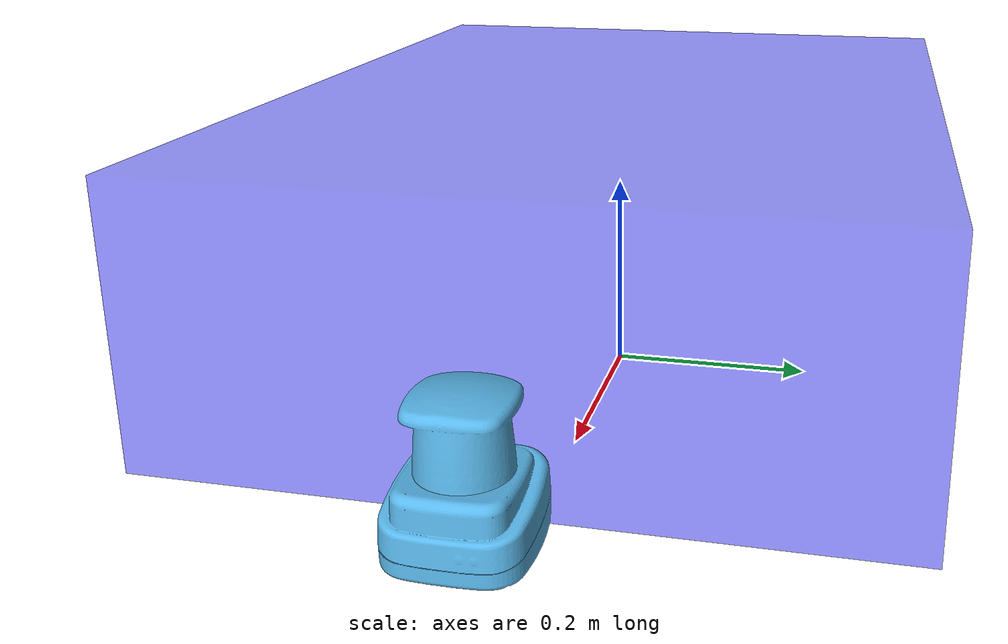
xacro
<?xml version="1.0"?>
<robot xmlns:xacro="http://wiki.ros.org/xacro" name="kf2102" >
    <!-- create a virtual root link -->
    <link name="base_footprint" />
    <!-- instantiate r2300 macro -->
    <link name="scanner_link" >
        <visual>
            <origin xyz="0 0 0" rpy="0 0 0" />
            <geometry>
                <mesh filename="package://orient_description/kf2102/meshes/R2000.stl" scale="0.001 0.001 0.001" />
            </geometry>
        </visual>

        <collision>
            <origin xyz="-0.0058 0 -0.03885" rpy="0 0 0" />
            <geometry>
                <box size="0.118 0.108 0.117" />
            </geometry>
        </collision>
    </link>

    <link name="base_link">
        <visual>
            <origin xyz="0.0 0.0 0.0" rpy="0 0 0"/>
            <geometry>
                <box size="0.84 0.64 0.25" />
            </geometry>
            <material name="blue">
                <color rgba="0.1 0.1 1.0 0.5"/>
            </material>
        </visual>
    </link>

    <!-- connect world link to scanner link -->
    <joint name="base_link_joint" type="fixed">
        <parent link="base_footprint" />
        <child link = "base_link" />
        <origin xyz="0.0 0.0 0.175" rpy="0.0 0.0 0.0" />
    </joint>
    <!-- connect world link to scanner link -->
    <joint name="scanner_link_joint" type="fixed">
        <parent link="base_link" />
        <child link = "scanner_link" />
        <origin xyz="0.5 0.0 0.0" rpy="0.0 0.0 0.0" />

    </joint>
</robot>
